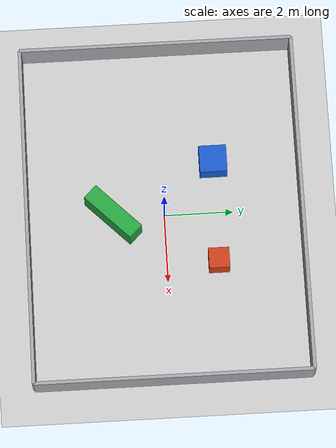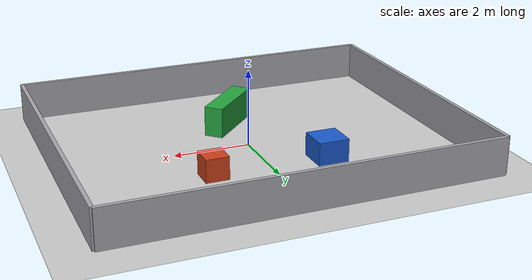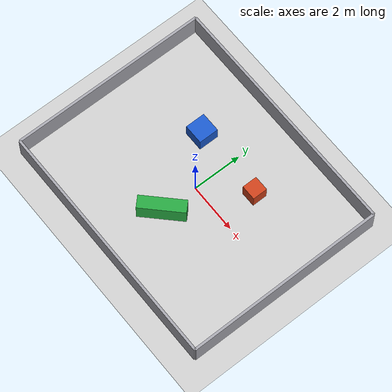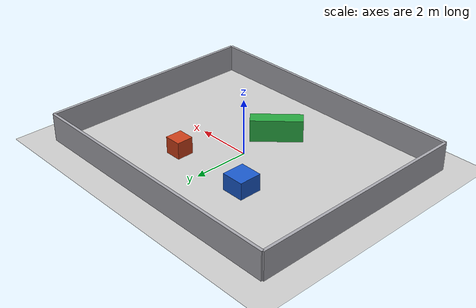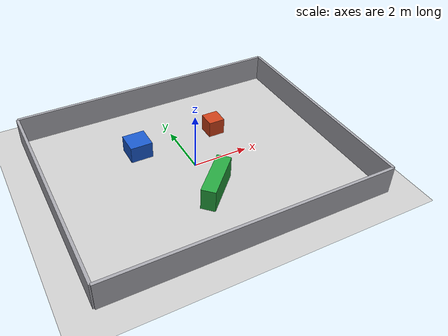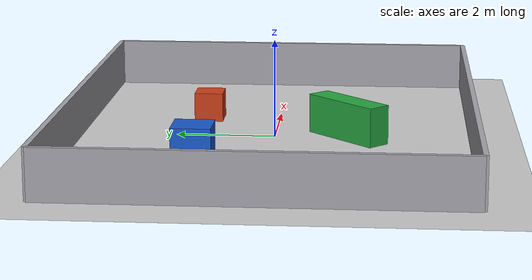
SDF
<?xml version="1.0" ?>
<sdf version="1.6">
  <world name="cakebot_test_env">
    <include>
      <uri>model://ground_plane</uri>
    </include>

    <include>
      <uri>model://sun</uri>
    </include>

    <!-- Outer walls: the room is approximately 10 m x 8 m. -->
    <model name="wall_north">
      <static>true</static>
      <pose>0 4 0.5 0 0 0</pose>
      <link name="link">
        <collision name="collision">
          <geometry>
            <box><size>10 0.1 1</size></box>
          </geometry>
        </collision>
        <visual name="visual">
          <geometry>
            <box><size>10 0.1 1</size></box>
          </geometry>
          <material>
            <ambient>0.65 0.65 0.68 1</ambient>
            <diffuse>0.65 0.65 0.68 1</diffuse>
          </material>
        </visual>
      </link>
    </model>

    <model name="wall_south">
      <static>true</static>
      <pose>0 -4 0.5 0 0 0</pose>
      <link name="link">
        <collision name="collision">
          <geometry>
            <box><size>10 0.1 1</size></box>
          </geometry>
        </collision>
        <visual name="visual">
          <geometry>
            <box><size>10 0.1 1</size></box>
          </geometry>
          <material>
            <ambient>0.65 0.65 0.68 1</ambient>
            <diffuse>0.65 0.65 0.68 1</diffuse>
          </material>
        </visual>
      </link>
    </model>

    <model name="wall_east">
      <static>true</static>
      <pose>5 0 0.5 0 0 0</pose>
      <link name="link">
        <collision name="collision">
          <geometry>
            <box><size>0.1 8 1</size></box>
          </geometry>
        </collision>
        <visual name="visual">
          <geometry>
            <box><size>0.1 8 1</size></box>
          </geometry>
          <material>
            <ambient>0.65 0.65 0.68 1</ambient>
            <diffuse>0.65 0.65 0.68 1</diffuse>
          </material>
        </visual>
      </link>
    </model>

    <model name="wall_west">
      <static>true</static>
      <pose>-5 0 0.5 0 0 0</pose>
      <link name="link">
        <collision name="collision">
          <geometry>
            <box><size>0.1 8 1</size></box>
          </geometry>
        </collision>
        <visual name="visual">
          <geometry>
            <box><size>0.1 8 1</size></box>
          </geometry>
          <material>
            <ambient>0.65 0.65 0.68 1</ambient>
            <diffuse>0.65 0.65 0.68 1</diffuse>
          </material>
        </visual>
      </link>
    </model>

    <!-- Static obstacles for validating the 2D laser scan. -->
    <model name="obstacle_box_1">
      <static>true</static>
      <pose>1.5 1.5 0.3 0 0 0</pose>
      <link name="link">
        <collision name="collision">
          <geometry>
            <box><size>0.6 0.6 0.6</size></box>
          </geometry>
        </collision>
        <visual name="visual">
          <geometry>
            <box><size>0.6 0.6 0.6</size></box>
          </geometry>
          <material>
            <ambient>0.8 0.25 0.1 1</ambient>
            <diffuse>0.8 0.25 0.1 1</diffuse>
          </material>
        </visual>
      </link>
    </model>

    <model name="obstacle_box_2">
      <static>true</static>
      <pose>-1.5 1.5 0.3 0 0 0</pose>
      <link name="link">
        <collision name="collision">
          <geometry>
            <box><size>0.8 0.8 0.6</size></box>
          </geometry>
        </collision>
        <visual name="visual">
          <geometry>
            <box><size>0.8 0.8 0.6</size></box>
          </geometry>
          <material>
            <ambient>0.1 0.35 0.8 1</ambient>
            <diffuse>0.1 0.35 0.8 1</diffuse>
          </material>
        </visual>
      </link>
    </model>

    <model name="obstacle_box_3">
      <static>true</static>
      <pose>0 -1.5 0.4 0 0 0.785398</pose>
      <link name="link">
        <collision name="collision">
          <geometry>
            <box><size>1.8 0.5 0.8</size></box>
          </geometry>
        </collision>
        <visual name="visual">
          <geometry>
            <box><size>1.8 0.5 0.8</size></box>
          </geometry>
          <material>
            <ambient>0.15 0.65 0.25 1</ambient>
            <diffuse>0.15 0.65 0.25 1</diffuse>
          </material>
        </visual>
      </link>
    </model>

    <physics type="ode">
      <real_time_update_rate>1000.0</real_time_update_rate>
      <max_step_size>0.001</max_step_size>
      <real_time_factor>1</real_time_factor>
    </physics>

    <scene>
      <ambient>0.4 0.4 0.4 1</ambient>
      <background>0.7 0.7 0.7 1</background>
      <shadows>true</shadows>
    </scene>
  </world>
</sdf>
